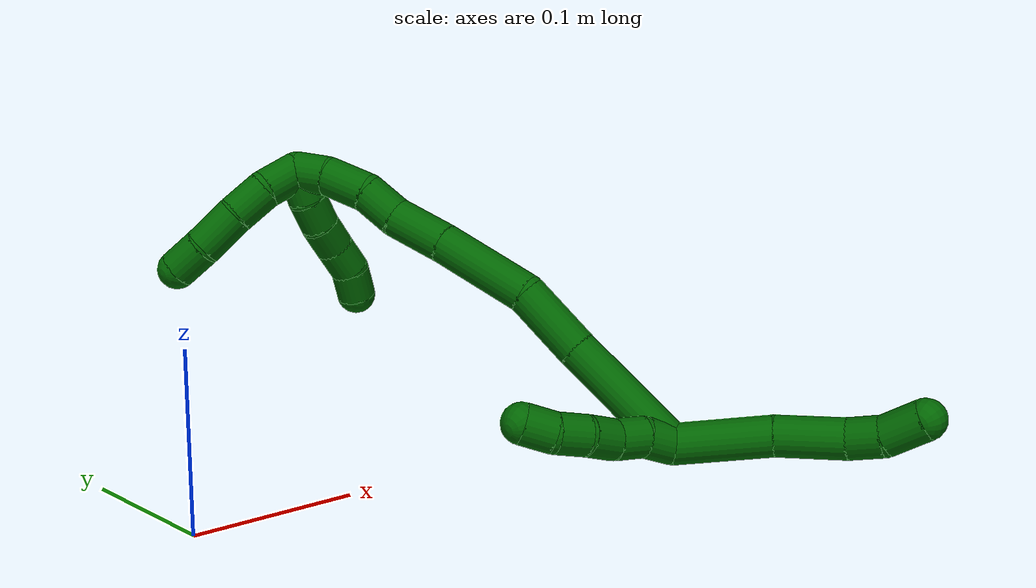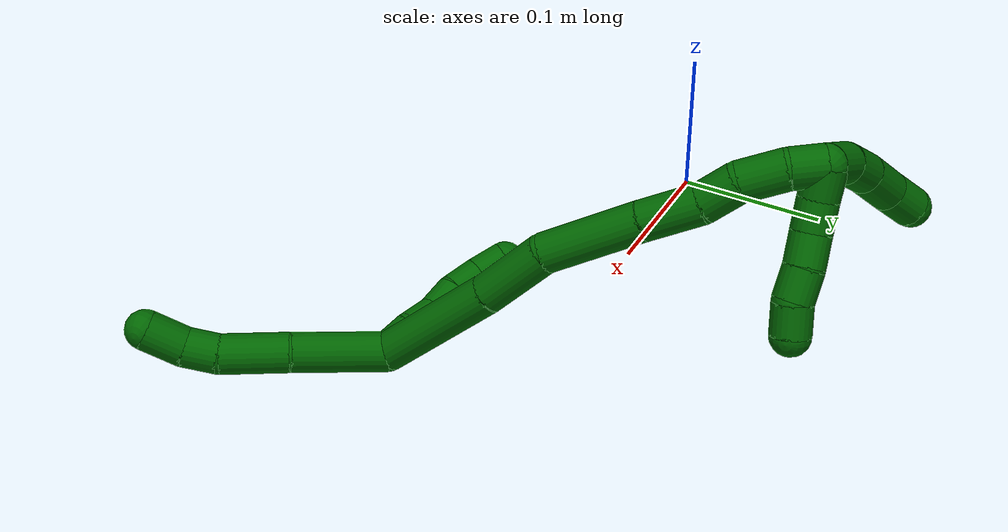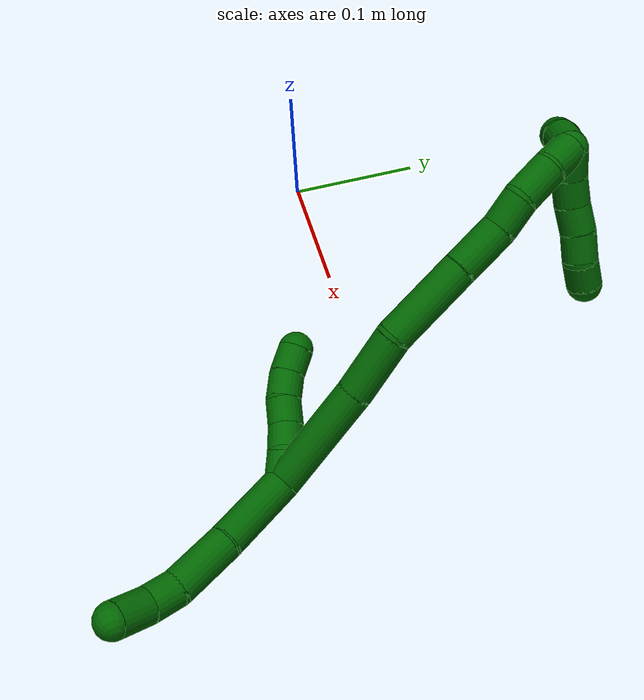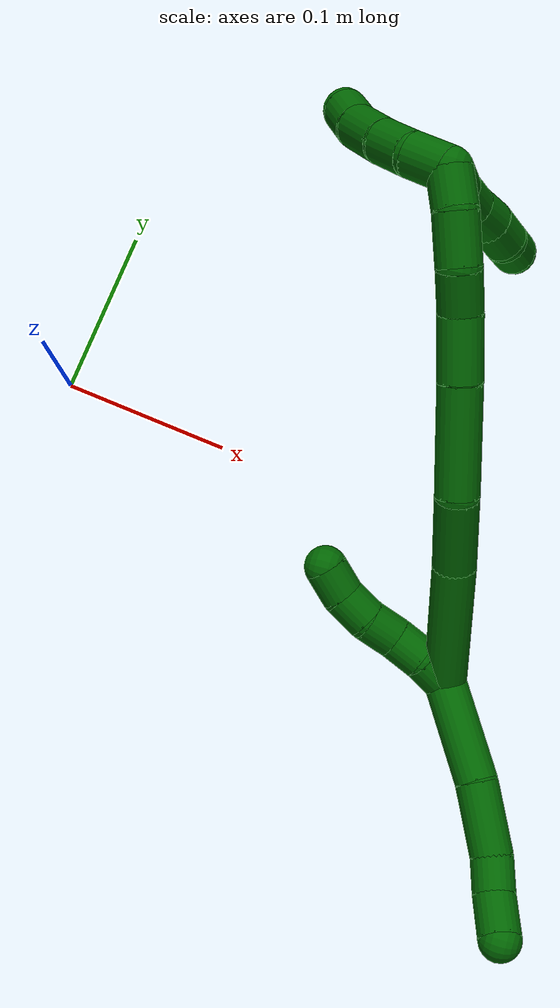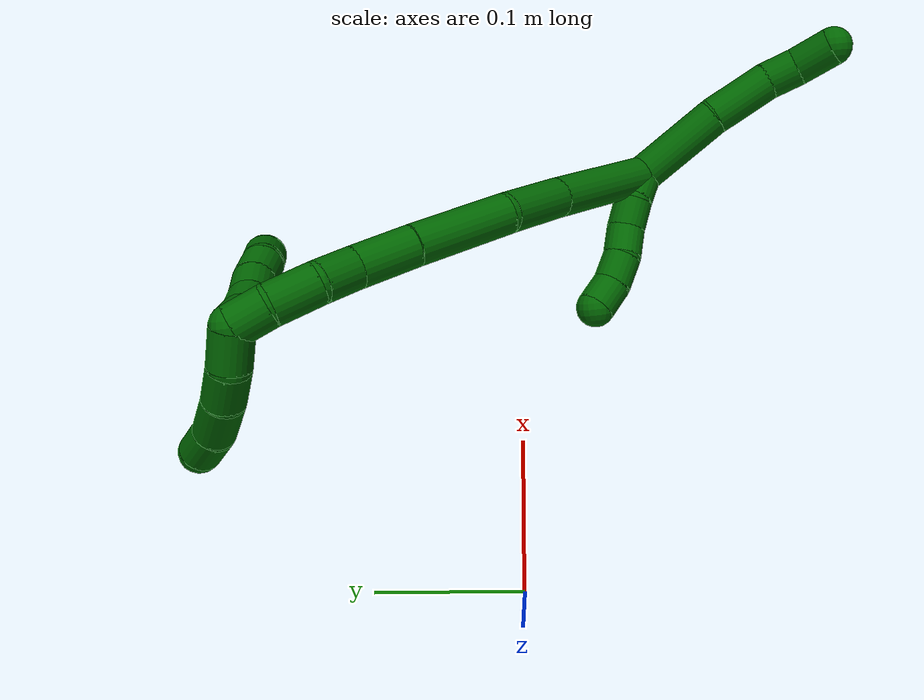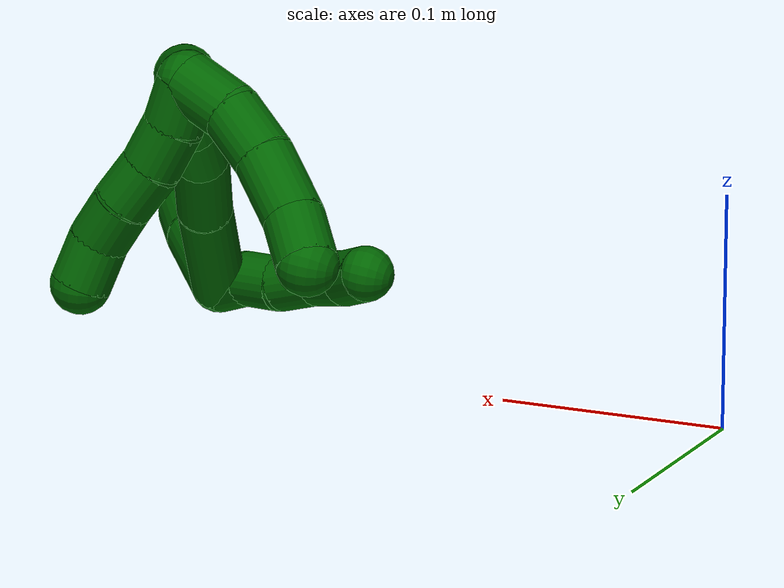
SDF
<sdf version="1.7">
 <world name="default">
  <model name="6">
   <static>0</static>
   <link name="6">
    <collision name="collision-cylinder-e_1_2_8">
     <pose>0.01592 -0.019669 0.016293 0.879001 0.557386 0.267463</pose>
     <geometry><cylinder><radius>0.0125</radius><length>0.060193</length></cylinder></geometry>
     <surface>
      <friction><ode><mu>1.16</mu><mu2>1.16</mu2><slip1>0</slip1><slip2>0</slip2></ode></friction>
      <contact><ode><kp>1e+06</kp><kd>1</kd><max_vel>0</max_vel><min_depth>0.001</min_depth></ode></contact>
     </surface>
    </collision>
    <visual name="visual-cylinder-e_1_2_8">
     <pose>0.01592 -0.019669 0.016293 0.879001 0.557386 0.267463</pose>
     <geometry><cylinder><radius>0.0125</radius><length>0.060193</length></cylinder></geometry>
     <material><ambient>0 0.392157 0.003922 1</ambient></material>
    </visual>
    <collision name="collision-cylinder-e_2_8_9">
     <pose>0.045215 -0.052828 0.042077 0.95767 0.681356 0.363991</pose>
     <geometry><cylinder><radius>0.0125</radius><length>0.042469</length></cylinder></geometry>
     <surface>
      <friction><ode><mu>1.16</mu><mu2>1.16</mu2><slip1>0</slip1><slip2>0</slip2></ode></friction>
      <contact><ode><kp>1e+06</kp><kd>1</kd><max_vel>0</max_vel><min_depth>0.001</min_depth></ode></contact>
     </surface>
    </collision>
    <visual name="visual-cylinder-e_2_8_9">
     <pose>0.045215 -0.052828 0.042077 0.95767 0.681356 0.363991</pose>
     <geometry><cylinder><radius>0.0125</radius><length>0.042469</length></cylinder></geometry>
     <material><ambient>0 0.392157 0.003922 1</ambient></material>
    </visual>
    <collision name="collision-cylinder-e_3_9_10">
     <pose>0.064197 -0.074833 0.054958 1.19188 0.54902 0.377441</pose>
     <geometry><cylinder><radius>0.0125</radius><length>0.02149</length></cylinder></geometry>
     <surface>
      <friction><ode><mu>1.16</mu><mu2>1.16</mu2><slip1>0</slip1><slip2>0</slip2></ode></friction>
      <contact><ode><kp>1e+06</kp><kd>1</kd><max_vel>0</max_vel><min_depth>0.001</min_depth></ode></contact>
     </surface>
    </collision>
    <visual name="visual-cylinder-e_3_9_10">
     <pose>0.064197 -0.074833 0.054958 1.19188 0.54902 0.377441</pose>
     <geometry><cylinder><radius>0.0125</radius><length>0.02149</length></cylinder></geometry>
     <material><ambient>0 0.392157 0.003922 1</ambient></material>
    </visual>
    <collision name="collision-cylinder-e_4_10_6">
     <pose>0.072903 -0.095017 0.062959 1.19454 0.242118 0.165106</pose>
     <geometry><cylinder><radius>0.0125</radius><length>0.025848</length></cylinder></geometry>
     <surface>
      <friction><ode><mu>1.16</mu><mu2>1.16</mu2><slip1>0</slip1><slip2>0</slip2></ode></friction>
      <contact><ode><kp>1e+06</kp><kd>1</kd><max_vel>0</max_vel><min_depth>0.001</min_depth></ode></contact>
     </surface>
    </collision>
    <visual name="visual-cylinder-e_4_10_6">
     <pose>0.072903 -0.095017 0.062959 1.19454 0.242118 0.165106</pose>
     <geometry><cylinder><radius>0.0125</radius><length>0.025848</length></cylinder></geometry>
     <material><ambient>0 0.392157 0.003922 1</ambient></material>
    </visual>
    <collision name="collision-cylinder-e_1_2_11">
     <pose>-0.006305 8.8e-05 -0.007762 -3.13022 -0.682174 3.10955</pose>
     <geometry><cylinder><radius>0.0125</radius><length>0.02</length></cylinder></geometry>
     <surface>
      <friction><ode><mu>1.16</mu><mu2>1.16</mu2><slip1>0</slip1><slip2>0</slip2></ode></friction>
      <contact><ode><kp>1e+06</kp><kd>1</kd><max_vel>0</max_vel><min_depth>0.001</min_depth></ode></contact>
     </surface>
    </collision>
    <visual name="visual-cylinder-e_1_2_11">
     <pose>-0.006305 8.8e-05 -0.007762 -3.13022 -0.682174 3.10955</pose>
     <geometry><cylinder><radius>0.0125</radius><length>0.02</length></cylinder></geometry>
     <material><ambient>0 0.392157 0.003922 1</ambient></material>
    </visual>
    <collision name="collision-cylinder-e_2_11_12">
     <pose>-0.016551 0.00165 -0.024595 -2.98053 -0.405139 2.39277</pose>
     <geometry><cylinder><radius>0.0125</radius><length>0.02</length></cylinder></geometry>
     <surface>
      <friction><ode><mu>1.16</mu><mu2>1.16</mu2><slip1>0</slip1><slip2>0</slip2></ode></friction>
      <contact><ode><kp>1e+06</kp><kd>1</kd><max_vel>0</max_vel><min_depth>0.001</min_depth></ode></contact>
     </surface>
    </collision>
    <visual name="visual-cylinder-e_2_11_12">
     <pose>-0.016551 0.00165 -0.024595 -2.98053 -0.405139 2.39277</pose>
     <geometry><cylinder><radius>0.0125</radius><length>0.02</length></cylinder></geometry>
     <material><ambient>0 0.392157 0.003922 1</ambient></material>
    </visual>
    <collision name="collision-cylinder-e_3_12_13">
     <pose>-0.025377 0.002243 -0.042347 3.04043 -0.510362 -2.75824</pose>
     <geometry><cylinder><radius>0.0125</radius><length>0.02</length></cylinder></geometry>
     <surface>
      <friction><ode><mu>1.16</mu><mu2>1.16</mu2><slip1>0</slip1><slip2>0</slip2></ode></friction>
      <contact><ode><kp>1e+06</kp><kd>1</kd><max_vel>0</max_vel><min_depth>0.001</min_depth></ode></contact>
     </surface>
    </collision>
    <visual name="visual-cylinder-e_3_12_13">
     <pose>-0.025377 0.002243 -0.042347 3.04043 -0.510362 -2.75824</pose>
     <geometry><cylinder><radius>0.0125</radius><length>0.02</length></cylinder></geometry>
     <material><ambient>0 0.392157 0.003922 1</ambient></material>
    </visual>
    <collision name="collision-cylinder-e_4_13_14">
     <pose>-0.03569 0.002628 -0.059331 -2.99027 -0.573673 2.63849</pose>
     <geometry><cylinder><radius>0.0125</radius><length>0.02</length></cylinder></geometry>
     <surface>
      <friction><ode><mu>1.16</mu><mu2>1.16</mu2><slip1>0</slip1><slip2>0</slip2></ode></friction>
      <contact><ode><kp>1e+06</kp><kd>1</kd><max_vel>0</max_vel><min_depth>0.001</min_depth></ode></contact>
     </surface>
    </collision>
    <visual name="visual-cylinder-e_4_13_14">
     <pose>-0.03569 0.002628 -0.059331 -2.99027 -0.573673 2.63849</pose>
     <geometry><cylinder><radius>0.0125</radius><length>0.02</length></cylinder></geometry>
     <material><ambient>0 0.392157 0.003922 1</ambient></material>
    </visual>
    <collision name="collision-cylinder-e_5_14_5">
     <pose>-0.048517 0.005673 -0.074121 -2.8739 -0.833128 2.55075</pose>
     <geometry><cylinder><radius>0.0125</radius><length>0.02</length></cylinder></geometry>
     <surface>
      <friction><ode><mu>1.16</mu><mu2>1.16</mu2><slip1>0</slip1><slip2>0</slip2></ode></friction>
      <contact><ode><kp>1e+06</kp><kd>1</kd><max_vel>0</max_vel><min_depth>0.001</min_depth></ode></contact>
     </surface>
    </collision>
    <visual name="visual-cylinder-e_5_14_5">
     <pose>-0.048517 0.005673 -0.074121 -2.8739 -0.833128 2.55075</pose>
     <geometry><cylinder><radius>0.0125</radius><length>0.02</length></cylinder></geometry>
     <material><ambient>0 0.392157 0.003922 1</ambient></material>
    </visual>
    <collision name="collision-cylinder-e_1_2_15">
     <pose>-0.03995 0.004339 -0.003998 -2.31524 -1.42417 2.20167</pose>
     <geometry><cylinder><radius>0.0125</radius><length>0.080766</length></cylinder></geometry>
     <surface>
      <friction><ode><mu>1.16</mu><mu2>1.16</mu2><slip1>0</slip1><slip2>0</slip2></ode></friction>
      <contact><ode><kp>1e+06</kp><kd>1</kd><max_vel>0</max_vel><min_depth>0.001</min_depth></ode></contact>
     </surface>
    </collision>
    <visual name="visual-cylinder-e_1_2_15">
     <pose>-0.03995 0.004339 -0.003998 -2.31524 -1.42417 2.20167</pose>
     <geometry><cylinder><radius>0.0125</radius><length>0.080766</length></cylinder></geometry>
     <material><ambient>0 0.392157 0.003922 1</ambient></material>
    </visual>
    <collision name="collision-cylinder-e_2_15_16">
     <pose>-0.10269 0.009429 -0.010698 -2.87072 -1.44834 2.83585</pose>
     <geometry><cylinder><radius>0.0125</radius><length>0.045925</length></cylinder></geometry>
     <surface>
      <friction><ode><mu>1.16</mu><mu2>1.16</mu2><slip1>0</slip1><slip2>0</slip2></ode></friction>
      <contact><ode><kp>1e+06</kp><kd>1</kd><max_vel>0</max_vel><min_depth>0.001</min_depth></ode></contact>
     </surface>
    </collision>
    <visual name="visual-cylinder-e_2_15_16">
     <pose>-0.10269 0.009429 -0.010698 -2.87072 -1.44834 2.83585</pose>
     <geometry><cylinder><radius>0.0125</radius><length>0.045925</length></cylinder></geometry>
     <material><ambient>0 0.392157 0.003922 1</ambient></material>
    </visual>
    <collision name="collision-cylinder-e_3_16_17">
     <pose>-0.154294 0.02019 -0.01912 -2.08987 -1.19019 1.72413</pose>
     <geometry><cylinder><radius>0.0125</radius><length>0.062071</length></cylinder></geometry>
     <surface>
      <friction><ode><mu>1.16</mu><mu2>1.16</mu2><slip1>0</slip1><slip2>0</slip2></ode></friction>
      <contact><ode><kp>1e+06</kp><kd>1</kd><max_vel>0</max_vel><min_depth>0.001</min_depth></ode></contact>
     </surface>
    </collision>
    <visual name="visual-cylinder-e_3_16_17">
     <pose>-0.154294 0.02019 -0.01912 -2.08987 -1.19019 1.72413</pose>
     <geometry><cylinder><radius>0.0125</radius><length>0.062071</length></cylinder></geometry>
     <material><ambient>0 0.392157 0.003922 1</ambient></material>
    </visual>
    <collision name="collision-cylinder-e_4_17_18">
     <pose>-0.19972 0.03678 -0.028704 -2.10187 -1.14022 1.68398</pose>
     <geometry><cylinder><radius>0.0125</radius><length>0.036559</length></cylinder></geometry>
     <surface>
      <friction><ode><mu>1.16</mu><mu2>1.16</mu2><slip1>0</slip1><slip2>0</slip2></ode></friction>
      <contact><ode><kp>1e+06</kp><kd>1</kd><max_vel>0</max_vel><min_depth>0.001</min_depth></ode></contact>
     </surface>
    </collision>
    <visual name="visual-cylinder-e_4_17_18">
     <pose>-0.19972 0.03678 -0.028704 -2.10187 -1.14022 1.68398</pose>
     <geometry><cylinder><radius>0.0125</radius><length>0.036559</length></cylinder></geometry>
     <material><ambient>0 0.392157 0.003922 1</ambient></material>
    </visual>
    <collision name="collision-cylinder-e_5_18_19">
     <pose>-0.228201 0.044846 -0.035044 -2.60053 -1.33211 2.46307</pose>
     <geometry><cylinder><radius>0.0125</radius><length>0.024433</length></cylinder></geometry>
     <surface>
      <friction><ode><mu>1.16</mu><mu2>1.16</mu2><slip1>0</slip1><slip2>0</slip2></ode></friction>
      <contact><ode><kp>1e+06</kp><kd>1</kd><max_vel>0</max_vel><min_depth>0.001</min_depth></ode></contact>
     </surface>
    </collision>
    <visual name="visual-cylinder-e_5_18_19">
     <pose>-0.228201 0.044846 -0.035044 -2.60053 -1.33211 2.46307</pose>
     <geometry><cylinder><radius>0.0125</radius><length>0.024433</length></cylinder></geometry>
     <material><ambient>0 0.392157 0.003922 1</ambient></material>
    </visual>
    <collision name="collision-cylinder-e_6_19_20">
     <pose>-0.252541 0.05211 -0.041599 -2.18577 -1.05491 1.68796</pose>
     <geometry><cylinder><radius>0.0125</radius><length>0.02867</length></cylinder></geometry>
     <surface>
      <friction><ode><mu>1.16</mu><mu2>1.16</mu2><slip1>0</slip1><slip2>0</slip2></ode></friction>
      <contact><ode><kp>1e+06</kp><kd>1</kd><max_vel>0</max_vel><min_depth>0.001</min_depth></ode></contact>
     </surface>
    </collision>
    <visual name="visual-cylinder-e_6_19_20">
     <pose>-0.252541 0.05211 -0.041599 -2.18577 -1.05491 1.68796</pose>
     <geometry><cylinder><radius>0.0125</radius><length>0.02867</length></cylinder></geometry>
     <material><ambient>0 0.392157 0.003922 1</ambient></material>
    </visual>
    <collision name="collision-cylinder-e_7_20_1">
     <pose>-0.272946 0.063917 -0.049807 -2.17096 -0.826494 1.38725</pose>
     <geometry><cylinder><radius>0.0125</radius><length>0.021576</length></cylinder></geometry>
     <surface>
      <friction><ode><mu>1.16</mu><mu2>1.16</mu2><slip1>0</slip1><slip2>0</slip2></ode></friction>
      <contact><ode><kp>1e+06</kp><kd>1</kd><max_vel>0</max_vel><min_depth>0.001</min_depth></ode></contact>
     </surface>
    </collision>
    <visual name="visual-cylinder-e_7_20_1">
     <pose>-0.272946 0.063917 -0.049807 -2.17096 -0.826494 1.38725</pose>
     <geometry><cylinder><radius>0.0125</radius><length>0.021576</length></cylinder></geometry>
     <material><ambient>0 0.392157 0.003922 1</ambient></material>
    </visual>
    <collision name="collision-cylinder-e_1_1_21">
     <pose>-0.280721 0.074577 -0.06509 -2.74835 0.013223 -0.066359</pose>
     <geometry><cylinder><radius>0.0125</radius><length>0.024157</length></cylinder></geometry>
     <surface>
      <friction><ode><mu>1.16</mu><mu2>1.16</mu2><slip1>0</slip1><slip2>0</slip2></ode></friction>
      <contact><ode><kp>1e+06</kp><kd>1</kd><max_vel>0</max_vel><min_depth>0.001</min_depth></ode></contact>
     </surface>
    </collision>
    <visual name="visual-cylinder-e_1_1_21">
     <pose>-0.280721 0.074577 -0.06509 -2.74835 0.013223 -0.066359</pose>
     <geometry><cylinder><radius>0.0125</radius><length>0.024157</length></cylinder></geometry>
     <material><ambient>0 0.392157 0.003922 1</ambient></material>
    </visual>
    <collision name="collision-cylinder-e_2_21_22">
     <pose>-0.279149 0.086629 -0.085754 -2.47867 0.116561 -0.335875</pose>
     <geometry><cylinder><radius>0.0125</radius><length>0.024293</length></cylinder></geometry>
     <surface>
      <friction><ode><mu>1.16</mu><mu2>1.16</mu2><slip1>0</slip1><slip2>0</slip2></ode></friction>
      <contact><ode><kp>1e+06</kp><kd>1</kd><max_vel>0</max_vel><min_depth>0.001</min_depth></ode></contact>
     </surface>
    </collision>
    <visual name="visual-cylinder-e_2_21_22">
     <pose>-0.279149 0.086629 -0.085754 -2.47867 0.116561 -0.335875</pose>
     <geometry><cylinder><radius>0.0125</radius><length>0.024293</length></cylinder></geometry>
     <material><ambient>0 0.392157 0.003922 1</ambient></material>
    </visual>
    <collision name="collision-cylinder-e_3_22_23">
     <pose>-0.275824 0.104565 -0.105159 -2.32605 0.131706 -0.302988</pose>
     <geometry><cylinder><radius>0.0125</radius><length>0.029126</length></cylinder></geometry>
     <surface>
      <friction><ode><mu>1.16</mu><mu2>1.16</mu2><slip1>0</slip1><slip2>0</slip2></ode></friction>
      <contact><ode><kp>1e+06</kp><kd>1</kd><max_vel>0</max_vel><min_depth>0.001</min_depth></ode></contact>
     </surface>
    </collision>
    <visual name="visual-cylinder-e_3_22_23">
     <pose>-0.275824 0.104565 -0.105159 -2.32605 0.131706 -0.302988</pose>
     <geometry><cylinder><radius>0.0125</radius><length>0.029126</length></cylinder></geometry>
     <material><ambient>0 0.392157 0.003922 1</ambient></material>
    </visual>
    <collision name="collision-cylinder-e_4_23_4">
     <pose>-0.273716 0.124384 -0.121304 -2.162 0.017444 -0.032718</pose>
     <geometry><cylinder><radius>0.0125</radius><length>0.022424</length></cylinder></geometry>
     <surface>
      <friction><ode><mu>1.16</mu><mu2>1.16</mu2><slip1>0</slip1><slip2>0</slip2></ode></friction>
      <contact><ode><kp>1e+06</kp><kd>1</kd><max_vel>0</max_vel><min_depth>0.001</min_depth></ode></contact>
     </surface>
    </collision>
    <visual name="visual-cylinder-e_4_23_4">
     <pose>-0.273716 0.124384 -0.121304 -2.162 0.017444 -0.032718</pose>
     <geometry><cylinder><radius>0.0125</radius><length>0.022424</length></cylinder></geometry>
     <material><ambient>0 0.392157 0.003922 1</ambient></material>
    </visual>
    <collision name="collision-cylinder-e_1_1_24">
     <pose>-0.273193 0.076072 -0.052088 -1.27786 0.876893 -0.670365</pose>
     <geometry><cylinder><radius>0.0125</radius><length>0.02</length></cylinder></geometry>
     <surface>
      <friction><ode><mu>1.16</mu><mu2>1.16</mu2><slip1>0</slip1><slip2>0</slip2></ode></friction>
      <contact><ode><kp>1e+06</kp><kd>1</kd><max_vel>0</max_vel><min_depth>0.001</min_depth></ode></contact>
     </surface>
    </collision>
    <visual name="visual-cylinder-e_1_1_24">
     <pose>-0.273193 0.076072 -0.052088 -1.27786 0.876893 -0.670365</pose>
     <geometry><cylinder><radius>0.0125</radius><length>0.02</length></cylinder></geometry>
     <material><ambient>0 0.392157 0.003922 1</ambient></material>
    </visual>
    <collision name="collision-cylinder-e_2_24_25">
     <pose>-0.258526 0.088504 -0.046853 -1.07805 0.772522 -0.477223</pose>
     <geometry><cylinder><radius>0.0125</radius><length>0.02</length></cylinder></geometry>
     <surface>
      <friction><ode><mu>1.16</mu><mu2>1.16</mu2><slip1>0</slip1><slip2>0</slip2></ode></friction>
      <contact><ode><kp>1e+06</kp><kd>1</kd><max_vel>0</max_vel><min_depth>0.001</min_depth></ode></contact>
     </surface>
    </collision>
    <visual name="visual-cylinder-e_2_24_25">
     <pose>-0.258526 0.088504 -0.046853 -1.07805 0.772522 -0.477223</pose>
     <geometry><cylinder><radius>0.0125</radius><length>0.02</length></cylinder></geometry>
     <material><ambient>0 0.392157 0.003922 1</ambient></material>
    </visual>
    <collision name="collision-cylinder-e_3_25_26">
     <pose>-0.245221 0.100946 -0.038735 -0.913745 0.684936 -0.346975</pose>
     <geometry><cylinder><radius>0.0125</radius><length>0.02</length></cylinder></geometry>
     <surface>
      <friction><ode><mu>1.16</mu><mu2>1.16</mu2><slip1>0</slip1><slip2>0</slip2></ode></friction>
      <contact><ode><kp>1e+06</kp><kd>1</kd><max_vel>0</max_vel><min_depth>0.001</min_depth></ode></contact>
     </surface>
    </collision>
    <visual name="visual-cylinder-e_3_25_26">
     <pose>-0.245221 0.100946 -0.038735 -0.913745 0.684936 -0.346975</pose>
     <geometry><cylinder><radius>0.0125</radius><length>0.02</length></cylinder></geometry>
     <material><ambient>0 0.392157 0.003922 1</ambient></material>
    </visual>
    <collision name="collision-cylinder-e_4_26_27">
     <pose>-0.231592 0.11242 -0.029746 -0.897729 0.818651 -0.411985</pose>
     <geometry><cylinder><radius>0.0125</radius><length>0.02</length></cylinder></geometry>
     <surface>
      <friction><ode><mu>1.16</mu><mu2>1.16</mu2><slip1>0</slip1><slip2>0</slip2></ode></friction>
      <contact><ode><kp>1e+06</kp><kd>1</kd><max_vel>0</max_vel><min_depth>0.001</min_depth></ode></contact>
     </surface>
    </collision>
    <visual name="visual-cylinder-e_4_26_27">
     <pose>-0.231592 0.11242 -0.029746 -0.897729 0.818651 -0.411985</pose>
     <geometry><cylinder><radius>0.0125</radius><length>0.02</length></cylinder></geometry>
     <material><ambient>0 0.392157 0.003922 1</ambient></material>
    </visual>
    <collision name="collision-cylinder-e_5_27_3">
     <pose>-0.217869 0.125119 -0.023331 -1.28577 0.697196 -0.531582</pose>
     <geometry><cylinder><radius>0.0125</radius><length>0.02</length></cylinder></geometry>
     <surface>
      <friction><ode><mu>1.16</mu><mu2>1.16</mu2><slip1>0</slip1><slip2>0</slip2></ode></friction>
      <contact><ode><kp>1e+06</kp><kd>1</kd><max_vel>0</max_vel><min_depth>0.001</min_depth></ode></contact>
     </surface>
    </collision>
    <visual name="visual-cylinder-e_5_27_3">
     <pose>-0.217869 0.125119 -0.023331 -1.28577 0.697196 -0.531582</pose>
     <geometry><cylinder><radius>0.0125</radius><length>0.02</length></cylinder></geometry>
     <material><ambient>0 0.392157 0.003922 1</ambient></material>
    </visual>
    <collision name="collision-sphere-3">
     <pose>-0.211449 0.132476 -0.021176 0 -0 0</pose>
     <geometry><sphere><radius>0.0125</radius></sphere></geometry>
     <surface>
      <friction><ode><mu>1.16</mu><mu2>1.16</mu2><slip1>0</slip1><slip2>0</slip2></ode></friction>
      <contact><ode><kp>1e+06</kp><kd>1</kd><max_vel>0</max_vel><min_depth>0.001</min_depth></ode></contact>
     </surface>
    </collision>
    <visual name="visual-sphere-3">
     <pose>-0.211449 0.132476 -0.021176 0 -0 0</pose>
     <geometry><sphere><radius>0.0125</radius></sphere></geometry>
     <material><ambient>0 0.392157 0.003922 1</ambient></material>
    </visual>
    <collision name="collision-sphere-27">
     <pose>-0.22429 0.117762 -0.025487 0 -0 0</pose>
     <geometry><sphere><radius>0.0125</radius></sphere></geometry>
     <surface>
      <friction><ode><mu>1.16</mu><mu2>1.16</mu2><slip1>0</slip1><slip2>0</slip2></ode></friction>
      <contact><ode><kp>1e+06</kp><kd>1</kd><max_vel>0</max_vel><min_depth>0.001</min_depth></ode></contact>
     </surface>
    </collision>
    <visual name="visual-sphere-27">
     <pose>-0.22429 0.117762 -0.025487 0 -0 0</pose>
     <geometry><sphere><radius>0.0125</radius></sphere></geometry>
     <material><ambient>0 0.392157 0.003922 1</ambient></material>
    </visual>
    <collision name="collision-sphere-26">
     <pose>-0.238894 0.107078 -0.034005 0 -0 0</pose>
     <geometry><sphere><radius>0.0125</radius></sphere></geometry>
     <surface>
      <friction><ode><mu>1.16</mu><mu2>1.16</mu2><slip1>0</slip1><slip2>0</slip2></ode></friction>
      <contact><ode><kp>1e+06</kp><kd>1</kd><max_vel>0</max_vel><min_depth>0.001</min_depth></ode></contact>
     </surface>
    </collision>
    <visual name="visual-sphere-26">
     <pose>-0.238894 0.107078 -0.034005 0 -0 0</pose>
     <geometry><sphere><radius>0.0125</radius></sphere></geometry>
     <material><ambient>0 0.392157 0.003922 1</ambient></material>
    </visual>
    <collision name="collision-sphere-25">
     <pose>-0.251547 0.094814 -0.043465 0 -0 0</pose>
     <geometry><sphere><radius>0.0125</radius></sphere></geometry>
     <surface>
      <friction><ode><mu>1.16</mu><mu2>1.16</mu2><slip1>0</slip1><slip2>0</slip2></ode></friction>
      <contact><ode><kp>1e+06</kp><kd>1</kd><max_vel>0</max_vel><min_depth>0.001</min_depth></ode></contact>
     </surface>
    </collision>
    <visual name="visual-sphere-25">
     <pose>-0.251547 0.094814 -0.043465 0 -0 0</pose>
     <geometry><sphere><radius>0.0125</radius></sphere></geometry>
     <material><ambient>0 0.392157 0.003922 1</ambient></material>
    </visual>
    <collision name="collision-sphere-24">
     <pose>-0.265506 0.082195 -0.050241 0 -0 0</pose>
     <geometry><sphere><radius>0.0125</radius></sphere></geometry>
     <surface>
      <friction><ode><mu>1.16</mu><mu2>1.16</mu2><slip1>0</slip1><slip2>0</slip2></ode></friction>
      <contact><ode><kp>1e+06</kp><kd>1</kd><max_vel>0</max_vel><min_depth>0.001</min_depth></ode></contact>
     </surface>
    </collision>
    <visual name="visual-sphere-24">
     <pose>-0.265506 0.082195 -0.050241 0 -0 0</pose>
     <geometry><sphere><radius>0.0125</radius></sphere></geometry>
     <material><ambient>0 0.392157 0.003922 1</ambient></material>
    </visual>
    <collision name="collision-sphere-4">
     <pose>-0.27352 0.133692 -0.127552 0 -0 0</pose>
     <geometry><sphere><radius>0.0125</radius></sphere></geometry>
     <surface>
      <friction><ode><mu>1.16</mu><mu2>1.16</mu2><slip1>0</slip1><slip2>0</slip2></ode></friction>
      <contact><ode><kp>1e+06</kp><kd>1</kd><max_vel>0</max_vel><min_depth>0.001</min_depth></ode></contact>
     </surface>
    </collision>
    <visual name="visual-sphere-4">
     <pose>-0.27352 0.133692 -0.127552 0 -0 0</pose>
     <geometry><sphere><radius>0.0125</radius></sphere></geometry>
     <material><ambient>0 0.392157 0.003922 1</ambient></material>
    </visual>
    <collision name="collision-sphere-23">
     <pose>-0.273911 0.115077 -0.115056 0 -0 0</pose>
     <geometry><sphere><radius>0.0125</radius></sphere></geometry>
     <surface>
      <friction><ode><mu>1.16</mu><mu2>1.16</mu2><slip1>0</slip1><slip2>0</slip2></ode></friction>
      <contact><ode><kp>1e+06</kp><kd>1</kd><max_vel>0</max_vel><min_depth>0.001</min_depth></ode></contact>
     </surface>
    </collision>
    <visual name="visual-sphere-23">
     <pose>-0.273911 0.115077 -0.115056 0 -0 0</pose>
     <geometry><sphere><radius>0.0125</radius></sphere></geometry>
     <material><ambient>0 0.392157 0.003922 1</ambient></material>
    </visual>
    <collision name="collision-sphere-22">
     <pose>-0.277736 0.094053 -0.095263 0 -0 0</pose>
     <geometry><sphere><radius>0.0125</radius></sphere></geometry>
     <surface>
      <friction><ode><mu>1.16</mu><mu2>1.16</mu2><slip1>0</slip1><slip2>0</slip2></ode></friction>
      <contact><ode><kp>1e+06</kp><kd>1</kd><max_vel>0</max_vel><min_depth>0.001</min_depth></ode></contact>
     </surface>
    </collision>
    <visual name="visual-sphere-22">
     <pose>-0.277736 0.094053 -0.095263 0 -0 0</pose>
     <geometry><sphere><radius>0.0125</radius></sphere></geometry>
     <material><ambient>0 0.392157 0.003922 1</ambient></material>
    </visual>
    <collision name="collision-sphere-21">
     <pose>-0.280562 0.079204 -0.076246 0 -0 0</pose>
     <geometry><sphere><radius>0.0125</radius></sphere></geometry>
     <surface>
      <friction><ode><mu>1.16</mu><mu2>1.16</mu2><slip1>0</slip1><slip2>0</slip2></ode></friction>
      <contact><ode><kp>1e+06</kp><kd>1</kd><max_vel>0</max_vel><min_depth>0.001</min_depth></ode></contact>
     </surface>
    </collision>
    <visual name="visual-sphere-21">
     <pose>-0.280562 0.079204 -0.076246 0 -0 0</pose>
     <geometry><sphere><radius>0.0125</radius></sphere></geometry>
     <material><ambient>0 0.392157 0.003922 1</ambient></material>
    </visual>
    <collision name="collision-sphere-1">
     <pose>-0.280881 0.069949 -0.053934 0 -0 0</pose>
     <geometry><sphere><radius>0.0125</radius></sphere></geometry>
     <surface>
      <friction><ode><mu>1.16</mu><mu2>1.16</mu2><slip1>0</slip1><slip2>0</slip2></ode></friction>
      <contact><ode><kp>1e+06</kp><kd>1</kd><max_vel>0</max_vel><min_depth>0.001</min_depth></ode></contact>
     </surface>
    </collision>
    <visual name="visual-sphere-1">
     <pose>-0.280881 0.069949 -0.053934 0 -0 0</pose>
     <geometry><sphere><radius>0.0125</radius></sphere></geometry>
     <material><ambient>0 0.392157 0.003922 1</ambient></material>
    </visual>
    <collision name="collision-sphere-11">
     <pose>-0.01261 0.000177 -0.015523 0 -0 0</pose>
     <geometry><sphere><radius>0.0125</radius></sphere></geometry>
     <surface>
      <friction><ode><mu>1.16</mu><mu2>1.16</mu2><slip1>0</slip1><slip2>0</slip2></ode></friction>
      <contact><ode><kp>1e+06</kp><kd>1</kd><max_vel>0</max_vel><min_depth>0.001</min_depth></ode></contact>
     </surface>
    </collision>
    <visual name="visual-sphere-11">
     <pose>-0.01261 0.000177 -0.015523 0 -0 0</pose>
     <geometry><sphere><radius>0.0125</radius></sphere></geometry>
     <material><ambient>0 0.392157 0.003922 1</ambient></material>
    </visual>
    <collision name="collision-sphere-6">
     <pose>0.076001 -0.106687 0.06757 0 -0 0</pose>
     <geometry><sphere><radius>0.0125</radius></sphere></geometry>
     <surface>
      <friction><ode><mu>1.16</mu><mu2>1.16</mu2><slip1>0</slip1><slip2>0</slip2></ode></friction>
      <contact><ode><kp>1e+06</kp><kd>1</kd><max_vel>0</max_vel><min_depth>0.001</min_depth></ode></contact>
     </surface>
    </collision>
    <visual name="visual-sphere-6">
     <pose>0.076001 -0.106687 0.06757 0 -0 0</pose>
     <geometry><sphere><radius>0.0125</radius></sphere></geometry>
     <material><ambient>0 0.392157 0.003922 1</ambient></material>
    </visual>
    <collision name="collision-sphere-10">
     <pose>0.069804 -0.083348 0.058349 0 -0 0</pose>
     <geometry><sphere><radius>0.0125</radius></sphere></geometry>
     <surface>
      <friction><ode><mu>1.16</mu><mu2>1.16</mu2><slip1>0</slip1><slip2>0</slip2></ode></friction>
      <contact><ode><kp>1e+06</kp><kd>1</kd><max_vel>0</max_vel><min_depth>0.001</min_depth></ode></contact>
     </surface>
    </collision>
    <visual name="visual-sphere-10">
     <pose>0.069804 -0.083348 0.058349 0 -0 0</pose>
     <geometry><sphere><radius>0.0125</radius></sphere></geometry>
     <material><ambient>0 0.392157 0.003922 1</ambient></material>
    </visual>
    <collision name="collision-sphere-9">
     <pose>0.058589 -0.066317 0.051568 0 -0 0</pose>
     <geometry><sphere><radius>0.0125</radius></sphere></geometry>
     <surface>
      <friction><ode><mu>1.16</mu><mu2>1.16</mu2><slip1>0</slip1><slip2>0</slip2></ode></friction>
      <contact><ode><kp>1e+06</kp><kd>1</kd><max_vel>0</max_vel><min_depth>0.001</min_depth></ode></contact>
     </surface>
    </collision>
    <visual name="visual-sphere-9">
     <pose>0.058589 -0.066317 0.051568 0 -0 0</pose>
     <geometry><sphere><radius>0.0125</radius></sphere></geometry>
     <material><ambient>0 0.392157 0.003922 1</ambient></material>
    </visual>
    <collision name="collision-sphere-2">
     <geometry><sphere><radius>0.0125</radius></sphere></geometry>
     <surface>
      <friction><ode><mu>1.16</mu><mu2>1.16</mu2><slip1>0</slip1><slip2>0</slip2></ode></friction>
      <contact><ode><kp>1e+06</kp><kd>1</kd><max_vel>0</max_vel><min_depth>0.001</min_depth></ode></contact>
     </surface>
    </collision>
    <visual name="visual-sphere-2">
     <geometry><sphere><radius>0.0125</radius></sphere></geometry>
     <material><ambient>0 0.392157 0.003922 1</ambient></material>
    </visual>
    <collision name="collision-sphere-19">
     <pose>-0.240071 0.046334 -0.037519 0 -0 0</pose>
     <geometry><sphere><radius>0.0125</radius></sphere></geometry>
     <surface>
      <friction><ode><mu>1.16</mu><mu2>1.16</mu2><slip1>0</slip1><slip2>0</slip2></ode></friction>
      <contact><ode><kp>1e+06</kp><kd>1</kd><max_vel>0</max_vel><min_depth>0.001</min_depth></ode></contact>
     </surface>
    </collision>
    <visual name="visual-sphere-19">
     <pose>-0.240071 0.046334 -0.037519 0 -0 0</pose>
     <geometry><sphere><radius>0.0125</radius></sphere></geometry>
     <material><ambient>0 0.392157 0.003922 1</ambient></material>
    </visual>
    <collision name="collision-sphere-8">
     <pose>0.03184 -0.039339 0.032586 0 -0 0</pose>
     <geometry><sphere><radius>0.0125</radius></sphere></geometry>
     <surface>
      <friction><ode><mu>1.16</mu><mu2>1.16</mu2><slip1>0</slip1><slip2>0</slip2></ode></friction>
      <contact><ode><kp>1e+06</kp><kd>1</kd><max_vel>0</max_vel><min_depth>0.001</min_depth></ode></contact>
     </surface>
    </collision>
    <visual name="visual-sphere-8">
     <pose>0.03184 -0.039339 0.032586 0 -0 0</pose>
     <geometry><sphere><radius>0.0125</radius></sphere></geometry>
     <material><ambient>0 0.392157 0.003922 1</ambient></material>
    </visual>
    <collision name="collision-sphere-12">
     <pose>-0.020493 0.003124 -0.033666 0 -0 0</pose>
     <geometry><sphere><radius>0.0125</radius></sphere></geometry>
     <surface>
      <friction><ode><mu>1.16</mu><mu2>1.16</mu2><slip1>0</slip1><slip2>0</slip2></ode></friction>
      <contact><ode><kp>1e+06</kp><kd>1</kd><max_vel>0</max_vel><min_depth>0.001</min_depth></ode></contact>
     </surface>
    </collision>
    <visual name="visual-sphere-12">
     <pose>-0.020493 0.003124 -0.033666 0 -0 0</pose>
     <geometry><sphere><radius>0.0125</radius></sphere></geometry>
     <material><ambient>0 0.392157 0.003922 1</ambient></material>
    </visual>
    <collision name="collision-sphere-13">
     <pose>-0.030262 0.001362 -0.051028 0 -0 0</pose>
     <geometry><sphere><radius>0.0125</radius></sphere></geometry>
     <surface>
      <friction><ode><mu>1.16</mu><mu2>1.16</mu2><slip1>0</slip1><slip2>0</slip2></ode></friction>
      <contact><ode><kp>1e+06</kp><kd>1</kd><max_vel>0</max_vel><min_depth>0.001</min_depth></ode></contact>
     </surface>
    </collision>
    <visual name="visual-sphere-13">
     <pose>-0.030262 0.001362 -0.051028 0 -0 0</pose>
     <geometry><sphere><radius>0.0125</radius></sphere></geometry>
     <material><ambient>0 0.392157 0.003922 1</ambient></material>
    </visual>
    <collision name="collision-sphere-14">
     <pose>-0.041117 0.003894 -0.067635 0 -0 0</pose>
     <geometry><sphere><radius>0.0125</radius></sphere></geometry>
     <surface>
      <friction><ode><mu>1.16</mu><mu2>1.16</mu2><slip1>0</slip1><slip2>0</slip2></ode></friction>
      <contact><ode><kp>1e+06</kp><kd>1</kd><max_vel>0</max_vel><min_depth>0.001</min_depth></ode></contact>
     </surface>
    </collision>
    <visual name="visual-sphere-14">
     <pose>-0.041117 0.003894 -0.067635 0 -0 0</pose>
     <geometry><sphere><radius>0.0125</radius></sphere></geometry>
     <material><ambient>0 0.392157 0.003922 1</ambient></material>
    </visual>
    <collision name="collision-sphere-5">
     <pose>-0.055918 0.007452 -0.080607 0 -0 0</pose>
     <geometry><sphere><radius>0.0125</radius></sphere></geometry>
     <surface>
      <friction><ode><mu>1.16</mu><mu2>1.16</mu2><slip1>0</slip1><slip2>0</slip2></ode></friction>
      <contact><ode><kp>1e+06</kp><kd>1</kd><max_vel>0</max_vel><min_depth>0.001</min_depth></ode></contact>
     </surface>
    </collision>
    <visual name="visual-sphere-5">
     <pose>-0.055918 0.007452 -0.080607 0 -0 0</pose>
     <geometry><sphere><radius>0.0125</radius></sphere></geometry>
     <material><ambient>0 0.392157 0.003922 1</ambient></material>
    </visual>
    <collision name="collision-sphere-15">
     <pose>-0.079899 0.008679 -0.007995 0 -0 0</pose>
     <geometry><sphere><radius>0.0125</radius></sphere></geometry>
     <surface>
      <friction><ode><mu>1.16</mu><mu2>1.16</mu2><slip1>0</slip1><slip2>0</slip2></ode></friction>
      <contact><ode><kp>1e+06</kp><kd>1</kd><max_vel>0</max_vel><min_depth>0.001</min_depth></ode></contact>
     </surface>
    </collision>
    <visual name="visual-sphere-15">
     <pose>-0.079899 0.008679 -0.007995 0 -0 0</pose>
     <geometry><sphere><radius>0.0125</radius></sphere></geometry>
     <material><ambient>0 0.392157 0.003922 1</ambient></material>
    </visual>
    <collision name="collision-sphere-16">
     <pose>-0.12548 0.01018 -0.013401 0 -0 0</pose>
     <geometry><sphere><radius>0.0125</radius></sphere></geometry>
     <surface>
      <friction><ode><mu>1.16</mu><mu2>1.16</mu2><slip1>0</slip1><slip2>0</slip2></ode></friction>
      <contact><ode><kp>1e+06</kp><kd>1</kd><max_vel>0</max_vel><min_depth>0.001</min_depth></ode></contact>
     </surface>
    </collision>
    <visual name="visual-sphere-16">
     <pose>-0.12548 0.01018 -0.013401 0 -0 0</pose>
     <geometry><sphere><radius>0.0125</radius></sphere></geometry>
     <material><ambient>0 0.392157 0.003922 1</ambient></material>
    </visual>
    <collision name="collision-sphere-17">
     <pose>-0.183109 0.030201 -0.024839 0 -0 0</pose>
     <geometry><sphere><radius>0.0125</radius></sphere></geometry>
     <surface>
      <friction><ode><mu>1.16</mu><mu2>1.16</mu2><slip1>0</slip1><slip2>0</slip2></ode></friction>
      <contact><ode><kp>1e+06</kp><kd>1</kd><max_vel>0</max_vel><min_depth>0.001</min_depth></ode></contact>
     </surface>
    </collision>
    <visual name="visual-sphere-17">
     <pose>-0.183109 0.030201 -0.024839 0 -0 0</pose>
     <geometry><sphere><radius>0.0125</radius></sphere></geometry>
     <material><ambient>0 0.392157 0.003922 1</ambient></material>
    </visual>
    <collision name="collision-sphere-18">
     <pose>-0.216331 0.043359 -0.032568 0 -0 0</pose>
     <geometry><sphere><radius>0.0125</radius></sphere></geometry>
     <surface>
      <friction><ode><mu>1.16</mu><mu2>1.16</mu2><slip1>0</slip1><slip2>0</slip2></ode></friction>
      <contact><ode><kp>1e+06</kp><kd>1</kd><max_vel>0</max_vel><min_depth>0.001</min_depth></ode></contact>
     </surface>
    </collision>
    <visual name="visual-sphere-18">
     <pose>-0.216331 0.043359 -0.032568 0 -0 0</pose>
     <geometry><sphere><radius>0.0125</radius></sphere></geometry>
     <material><ambient>0 0.392157 0.003922 1</ambient></material>
    </visual>
    <collision name="collision-sphere-20">
     <pose>-0.26501 0.057886 -0.045679 0 -0 0</pose>
     <geometry><sphere><radius>0.0125</radius></sphere></geometry>
     <surface>
      <friction><ode><mu>1.16</mu><mu2>1.16</mu2><slip1>0</slip1><slip2>0</slip2></ode></friction>
      <contact><ode><kp>1e+06</kp><kd>1</kd><max_vel>0</max_vel><min_depth>0.001</min_depth></ode></contact>
     </surface>
    </collision>
    <visual name="visual-sphere-20">
     <pose>-0.26501 0.057886 -0.045679 0 -0 0</pose>
     <geometry><sphere><radius>0.0125</radius></sphere></geometry>
     <material><ambient>0 0.392157 0.003922 1</ambient></material>
    </visual>
    <inertial>
     <pose>-0.12306 0.026542 -0.024019 0 -0 0</pose>
     <mass>0.75</mass>
     <inertia><ixx>3.8e-05</ixx><ixy>0</ixy><ixz>0</ixz><iyy>0.000145</iyy><iyz>0</iyz><izz>5.5e-05</izz></inertia>
    </inertial>
   </link>
   <pose>0.276474 -0.080793 0.012479 -1.33433 0.815099 -1.28506</pose>
  </model>
 </world>
</sdf>
